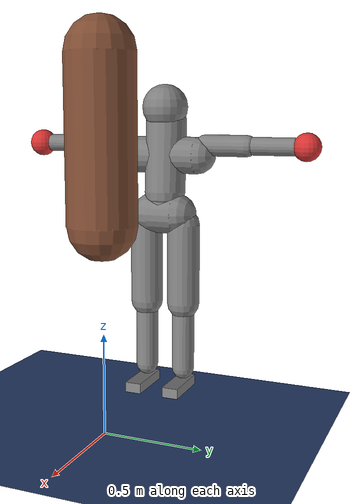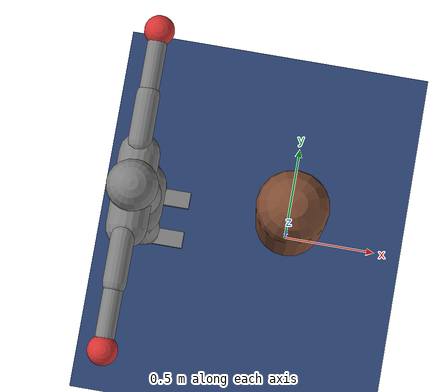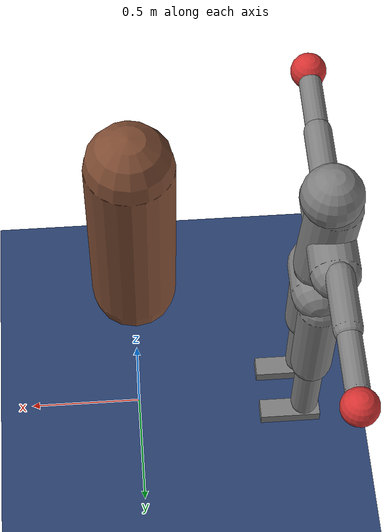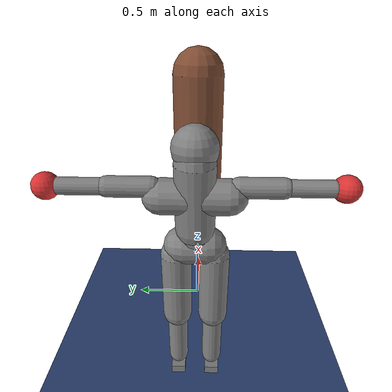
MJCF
<mujoco model="trump_bag">
  <compiler angle="degree" inertiafromgeom="true" autolimits="true"/>
  <option timestep="0.005" iterations="10" ls_iterations="10" integrator="implicitfast">
    <flag eulerdamp="disable"/>
  </option>
  <default>
    <geom contype="1" conaffinity="1" condim="3" friction="1.0 0.005 0.0001" density="1000" margin="0"/>
    <joint limited="true"/>
    <position ctrllimited="true"/>
  </default>
  <asset>
    <texture name="grid" type="2d" builtin="checker" rgb1=".18 .28 .48" rgb2=".14 .22 .40" width="300" height="300"/>
    <material name="grid" texture="grid" texrepeat="6 6" reflectance="0"/>
  </asset>
  <worldbody>
    <light pos="0 0 5" dir="0 0 -1" directional="true"/>
    <geom name="floor" type="plane" size="0 0 0.05" material="grid" friction="1.0 0.005 0.0001"/>

    <body name="a_pelvis" pos="-0.7500 0.0000 0.9982" quat="1.00000 0 0 0.00000">
      <freejoint name="a_root"/>
      <geom name="a_pelvis_geom" type="capsule" fromto="0.0000 -0.0700 0.0000 0.0000 0.0700 0.0000" size="0.1121" mass="9.6630" />
      <geom name="a_pelvis_up" type="capsule" fromto="0.0000 0.0000 0.0000 -0.0074 0.0000 0.0765" size="0.1009" mass="5.7156" />
      <body name="a_torso" pos="-0.0074 0.0000 0.0965">
        <joint name="a_abdomen_z" type="hinge" axis="0 0 1" range="-45 45" damping="0.5" armature="0.08" stiffness="0"/>
        <joint name="a_abdomen_y" type="hinge" axis="0 1 0" range="-60 30" damping="0.5" armature="0.08" stiffness="0"/>
        <joint name="a_abdomen_x" type="hinge" axis="1 0 0" range="-35 35" damping="0.5" armature="0.08" stiffness="0"/>
        <geom name="a_torso_geom" type="capsule" fromto="0.0000 0.0000 0.0200 -0.0223 0.0000 0.4131" size="0.1121" mass="38.4465" />
        <geom name="a_chest_geom" type="capsule" fromto="-0.0178 -0.1841 0.2257 -0.0178 0.1841 0.2257" size="0.1009" mass="0.5"/>
        <geom name="a_head_geom" type="sphere" pos="-0.0037 0.0000 0.4861" size="0.1250" mass="8.7723" />
        <body name="a_upper_arm_l" pos="-0.0223 0.2301 0.2821">
          <joint name="a_shoulder_x_l" type="hinge" axis="1 0 0" range="-170 30" damping="0.5" armature="0.03" stiffness="0"/>
          <joint name="a_shoulder_z_l" type="hinge" axis="0 0 1" range="-110 110" damping="0.5" armature="0.03" stiffness="0"/>
          <geom name="a_upper_arm_l_geom" type="capsule" fromto="0.0000 0.0000 0.0000 0.0000 0.2324 0.0000" size="0.0580" mass="3.0324" />
          <body name="a_forearm_l" pos="0.0000 0.2324 0.0000">
            <joint name="a_elbow_l" type="hinge" axis="0 0 1" range="-150 0" damping="0.5" armature="0.02" stiffness="0"/>
            <geom name="a_forearm_l_geom" type="capsule" fromto="0.0000 0.0000 0.0000 0.0000 0.2561 0.0000" size="0.0480" mass="1.7328" />
            <geom name="a_glove_l" type="sphere" pos="0.0000 0.3236 0.0000" size="0.0750" mass="0.9328" rgba="0.85 0.2 0.2 1"/>
          </body>
        </body>
        <body name="a_upper_arm_r" pos="-0.0223 -0.2301 0.2821">
          <joint name="a_shoulder_x_r" type="hinge" axis="1 0 0" range="-30 170" damping="0.5" armature="0.03" stiffness="0"/>
          <joint name="a_shoulder_z_r" type="hinge" axis="0 0 1" range="-110 110" damping="0.5" armature="0.03" stiffness="0"/>
          <geom name="a_upper_arm_r_geom" type="capsule" fromto="0.0000 0.0000 0.0000 0.0000 -0.2324 0.0000" size="0.0580" mass="3.0324" />
          <body name="a_forearm_r" pos="0.0000 -0.2324 0.0000">
            <joint name="a_elbow_r" type="hinge" axis="0 0 1" range="0 150" damping="0.5" armature="0.02" stiffness="0"/>
            <geom name="a_forearm_r_geom" type="capsule" fromto="0.0000 0.0000 0.0000 0.0000 -0.2561 0.0000" size="0.0480" mass="1.7328" />
            <geom name="a_glove_r" type="sphere" pos="0.0000 -0.3236 0.0000" size="0.0750" mass="0.9328" rgba="0.85 0.2 0.2 1"/>
          </body>
        </body>
      </body>
      <body name="a_thigh_l" pos="-0.0074 0.1113 -0.0593">
        <joint name="a_hip_x_l" type="hinge" axis="1 0 0" range="-40 40" damping="0.5" armature="0.1" stiffness="0"/>
        <joint name="a_hip_z_l" type="hinge" axis="0 0 1" range="-35 35" damping="0.5" armature="0.1" stiffness="0"/>
        <joint name="a_hip_y_l" type="hinge" axis="0 1 0" range="-120 30" damping="0.5" armature="0.1" stiffness="0"/>
        <geom name="a_thigh_l_geom" type="capsule" fromto="0.0000 0.0000 0.0000 0.0000 0.0000 -0.4454" size="0.0900" mass="10.8300" />
        <body name="a_shin_l" pos="0.0000 0.0000 -0.4454">
          <joint name="a_knee_l" type="hinge" axis="0 1 0" range="0 150" damping="0.5" armature="0.1" stiffness="0"/>
          <geom name="a_shin_l_geom" type="capsule" fromto="0.0000 0.0000 0.0000 0.0000 0.0000 -0.3790" size="0.0620" mass="5.0359" />
          <body name="a_foot_l" pos="0.0000 0.0000 -0.3790">
            <joint name="a_ankle_y_l" type="hinge" axis="0 1 0" range="-20 50" damping="0.5" armature="0.03" stiffness="0"/>
            <joint name="a_ankle_x_l" type="hinge" axis="1 0 0" range="-25 25" damping="0.5" armature="0.03" stiffness="0"/>
            <geom name="a_foot_l_geom" type="box" pos="0.0627 0.0000 -0.0870" size="0.1363 0.0450 0.0280" mass="1.5704" friction="1.0 0.005 0.0001"/>
            <site name="a_foot_l_site" pos="0.0627 0.0000 -0.0870" size="0.01"/>
          </body>
        </body>
      </body>
      <body name="a_thigh_r" pos="-0.0074 -0.1113 -0.0593">
        <joint name="a_hip_x_r" type="hinge" axis="1 0 0" range="-40 40" damping="0.5" armature="0.1" stiffness="0"/>
        <joint name="a_hip_z_r" type="hinge" axis="0 0 1" range="-35 35" damping="0.5" armature="0.1" stiffness="0"/>
        <joint name="a_hip_y_r" type="hinge" axis="0 1 0" range="-120 30" damping="0.5" armature="0.1" stiffness="0"/>
        <geom name="a_thigh_r_geom" type="capsule" fromto="0.0000 0.0000 0.0000 0.0000 0.0000 -0.4454" size="0.0900" mass="10.8300" />
        <body name="a_shin_r" pos="0.0000 0.0000 -0.4454">
          <joint name="a_knee_r" type="hinge" axis="0 1 0" range="0 150" damping="0.5" armature="0.1" stiffness="0"/>
          <geom name="a_shin_r_geom" type="capsule" fromto="0.0000 0.0000 0.0000 0.0000 0.0000 -0.3790" size="0.0620" mass="5.0359" />
          <body name="a_foot_r" pos="0.0000 0.0000 -0.3790">
            <joint name="a_ankle_y_r" type="hinge" axis="0 1 0" range="-20 50" damping="0.5" armature="0.03" stiffness="0"/>
            <joint name="a_ankle_x_r" type="hinge" axis="1 0 0" range="-25 25" damping="0.5" armature="0.03" stiffness="0"/>
            <geom name="a_foot_r_geom" type="box" pos="0.0627 0.0000 -0.0870" size="0.1363 0.0450 0.0280" mass="1.5704" friction="1.0 0.005 0.0001"/>
            <site name="a_foot_r_site" pos="0.0627 0.0000 -0.0870" size="0.01"/>
          </body>
        </body>
      </body>
    </body>
    <body name="bag" pos="0 0 2.45">
      <joint name="bag_swing" type="ball" damping="6"/>
      <geom name="bag_geom" type="capsule" fromto="0 0 -0.62 0 0 -1.42" size="0.17" mass="35" rgba="0.5 0.3 0.2 1"/>
      <site name="bag_head" pos="0 0 -0.82" size="0.02"/>
      <site name="bag_body" pos="0 0 -1.22" size="0.02"/>
    </body>
  </worldbody>
  <contact>
    <exclude body1="a_pelvis" body2="a_torso"/>
    <exclude body1="a_pelvis" body2="a_thigh_l"/>
    <exclude body1="a_thigh_l" body2="a_shin_l"/>
    <exclude body1="a_shin_l" body2="a_foot_l"/>
    <exclude body1="a_torso" body2="a_upper_arm_l"/>
    <exclude body1="a_upper_arm_l" body2="a_forearm_l"/>
    <exclude body1="a_pelvis" body2="a_thigh_r"/>
    <exclude body1="a_thigh_r" body2="a_shin_r"/>
    <exclude body1="a_shin_r" body2="a_foot_r"/>
    <exclude body1="a_torso" body2="a_upper_arm_r"/>
    <exclude body1="a_upper_arm_r" body2="a_forearm_r"/>
  </contact>
  <actuator>
    <position name="a_abdomen_z" joint="a_abdomen_z" kp="495.9" kv="23.142" forcerange="-187.34 187.34" ctrlrange="-0.7854 0.7854"/>
    <position name="a_abdomen_y" joint="a_abdomen_y" kp="495.9" kv="23.142" forcerange="-187.34 187.34" ctrlrange="-1.0472 0.5236"/>
    <position name="a_abdomen_x" joint="a_abdomen_x" kp="495.9" kv="23.142" forcerange="-187.34 187.34" ctrlrange="-0.6109 0.6109"/>
    <position name="a_shoulder_x_l" joint="a_shoulder_x_l" kp="176.32" kv="8.816" forcerange="-110.2 110.2" ctrlrange="-2.9671 0.5236"/>
    <position name="a_shoulder_z_l" joint="a_shoulder_z_l" kp="176.32" kv="8.816" forcerange="-110.2 110.2" ctrlrange="-1.9199 1.9199"/>
    <position name="a_elbow_l" joint="a_elbow_l" kp="121.22" kv="6.061" forcerange="-77.14 77.14" ctrlrange="-2.6180 0.0000"/>
    <position name="a_shoulder_x_r" joint="a_shoulder_x_r" kp="176.32" kv="8.816" forcerange="-110.2 110.2" ctrlrange="-0.5236 2.9671"/>
    <position name="a_shoulder_z_r" joint="a_shoulder_z_r" kp="176.32" kv="8.816" forcerange="-110.2 110.2" ctrlrange="-1.9199 1.9199"/>
    <position name="a_elbow_r" joint="a_elbow_r" kp="121.22" kv="6.061" forcerange="-77.14 77.14" ctrlrange="0.0000 2.6180"/>
    <position name="a_hip_x_l" joint="a_hip_x_l" kp="661.2" kv="33.06" forcerange="-264.48 264.48" ctrlrange="-0.6981 0.6981"/>
    <position name="a_hip_z_l" joint="a_hip_z_l" kp="661.2" kv="33.06" forcerange="-264.48 264.48" ctrlrange="-0.6109 0.6109"/>
    <position name="a_hip_y_l" joint="a_hip_y_l" kp="661.2" kv="33.06" forcerange="-264.48 264.48" ctrlrange="-2.0944 0.5236"/>
    <position name="a_knee_l" joint="a_knee_l" kp="661.2" kv="33.06" forcerange="-286.52 286.52" ctrlrange="0.0000 2.6180"/>
    <position name="a_ankle_y_l" joint="a_ankle_y_l" kp="826.5" kv="33.06" forcerange="-242.44 242.44" ctrlrange="-0.3491 0.8727"/>
    <position name="a_ankle_x_l" joint="a_ankle_x_l" kp="88.16" kv="4.408" forcerange="-66.12 66.12" ctrlrange="-0.4363 0.4363"/>
    <position name="a_hip_x_r" joint="a_hip_x_r" kp="661.2" kv="33.06" forcerange="-264.48 264.48" ctrlrange="-0.6981 0.6981"/>
    <position name="a_hip_z_r" joint="a_hip_z_r" kp="661.2" kv="33.06" forcerange="-264.48 264.48" ctrlrange="-0.6109 0.6109"/>
    <position name="a_hip_y_r" joint="a_hip_y_r" kp="661.2" kv="33.06" forcerange="-264.48 264.48" ctrlrange="-2.0944 0.5236"/>
    <position name="a_knee_r" joint="a_knee_r" kp="661.2" kv="33.06" forcerange="-286.52 286.52" ctrlrange="0.0000 2.6180"/>
    <position name="a_ankle_y_r" joint="a_ankle_y_r" kp="826.5" kv="33.06" forcerange="-242.44 242.44" ctrlrange="-0.3491 0.8727"/>
    <position name="a_ankle_x_r" joint="a_ankle_x_r" kp="88.16" kv="4.408" forcerange="-66.12 66.12" ctrlrange="-0.4363 0.4363"/>
  </actuator>
  <keyframe>
    <key name="stand" qpos="-0.7500 0.0000 0.9790 1.00000 0 0 0.00000 0.0000 0.0000 0.0000 -1.3265 -0.7330 -1.9548 1.3265 0.7330 1.9548 0.0000 0.0000 -0.1656 0.4538 -0.2882 0.0000 0.0000 0.0000 -0.1656 0.4538 -0.2882 0.0000 1 0 0 0"/>
  </keyframe>
</mujoco>
